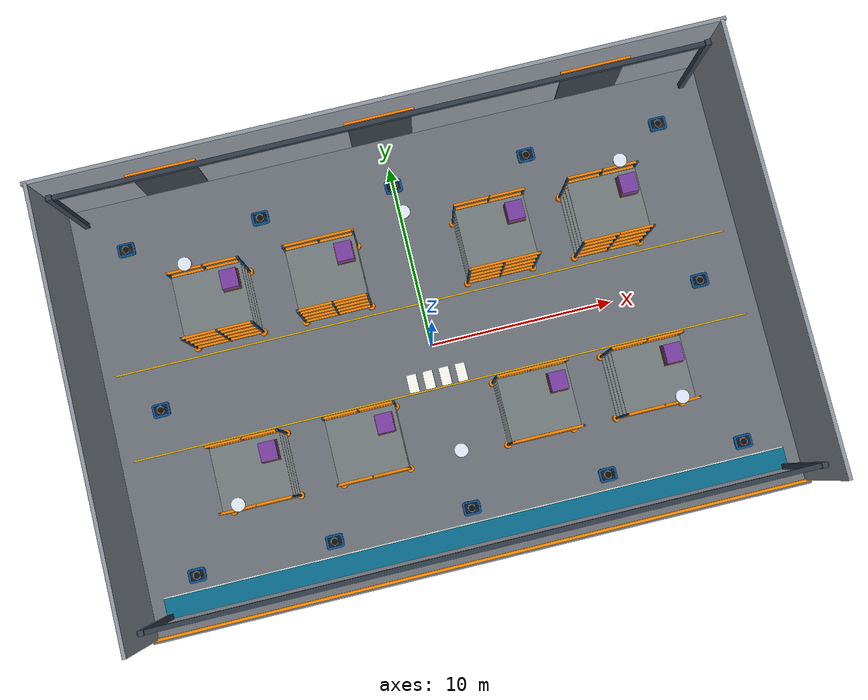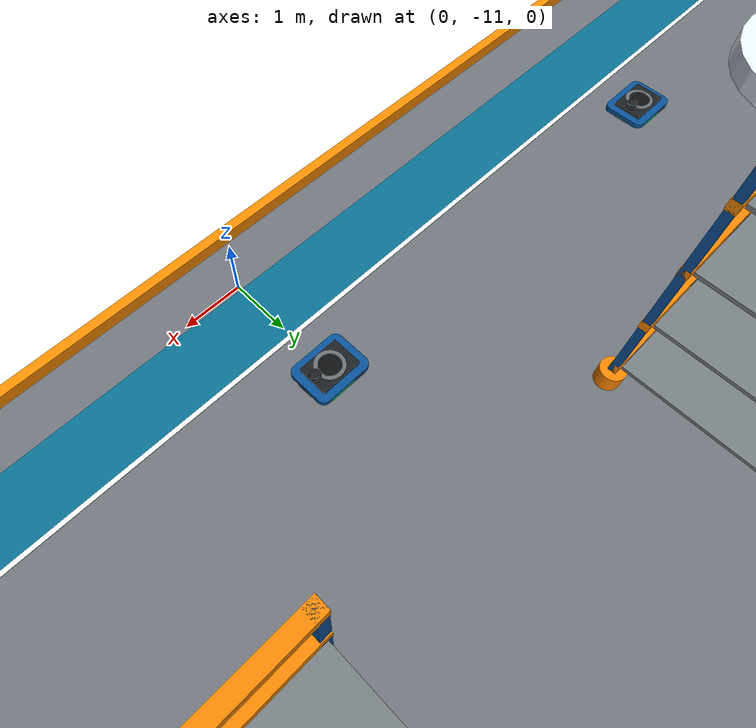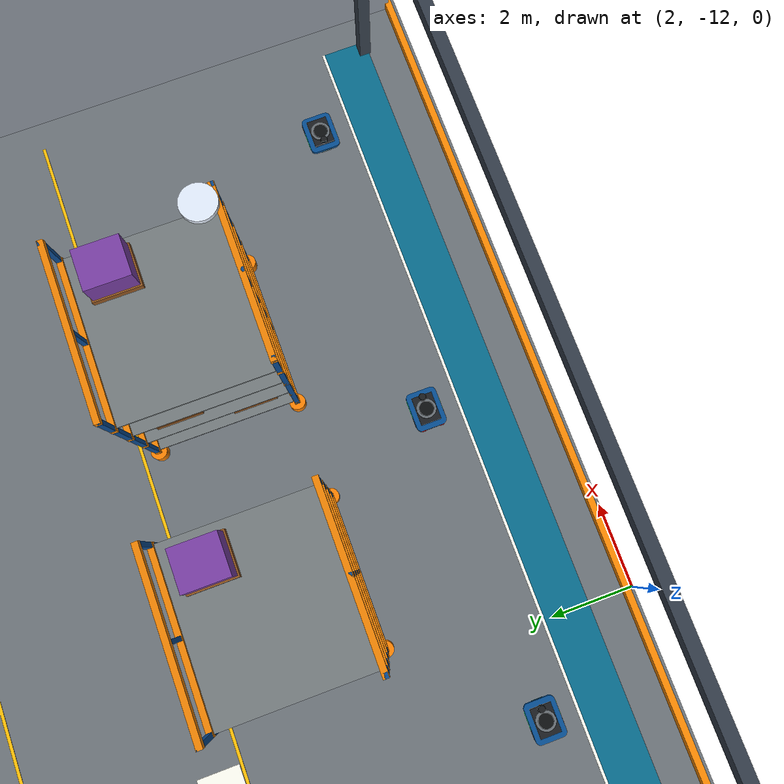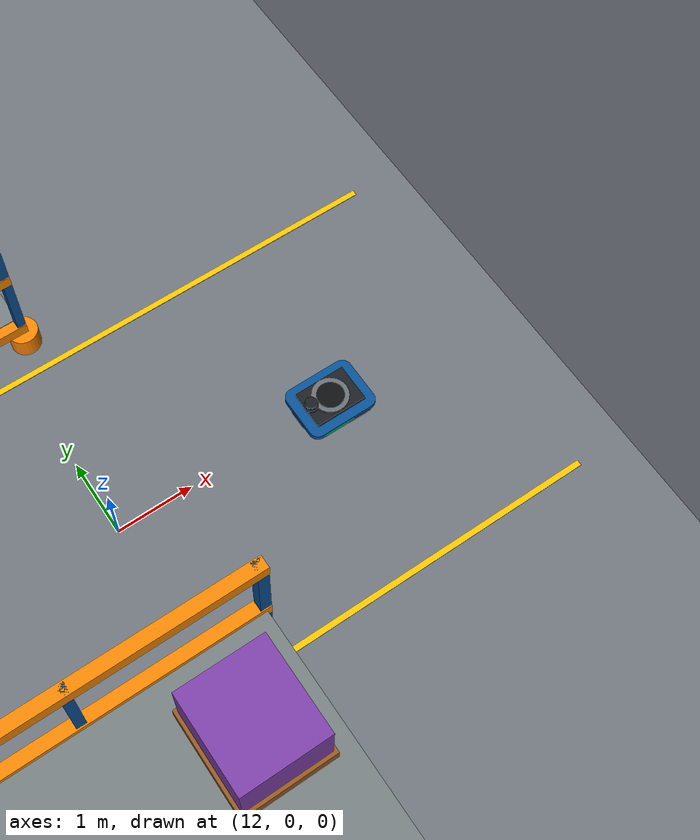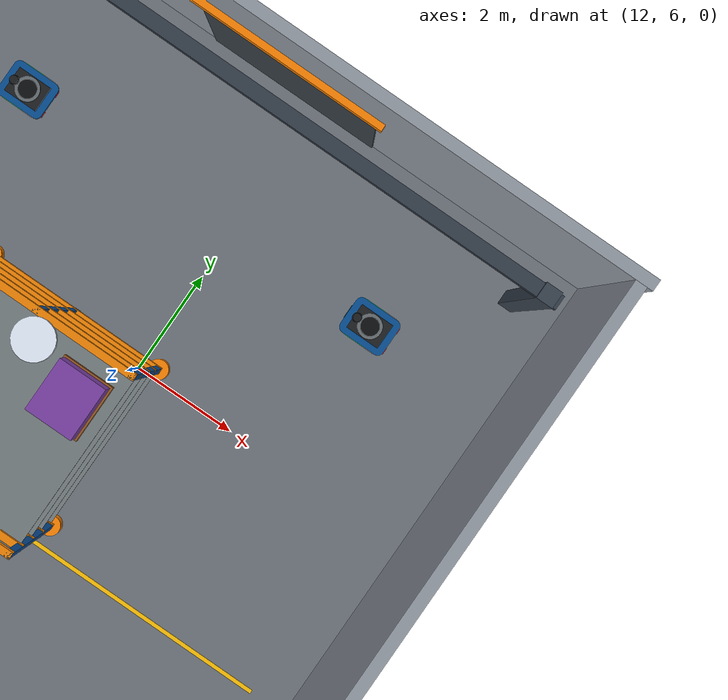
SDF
<?xml version="1.0"?>
<sdf version="1.10">
  <world name="kinesis_warehouse">
    <physics name="warehouse_physics" type="ignored">
      <max_step_size>0.002</max_step_size>
      <real_time_factor>1.0</real_time_factor>
    </physics>
    <plugin filename="gz-sim-physics-system" name="gz::sim::systems::Physics"/>
    <plugin filename="gz-sim-user-commands-system" name="gz::sim::systems::UserCommands"/>
    <plugin filename="gz-sim-scene-broadcaster-system" name="gz::sim::systems::SceneBroadcaster"/>
    <plugin filename="gz-sim-sensors-system" name="gz::sim::systems::Sensors"><render_engine>ogre2</render_engine></plugin>

    <gravity>0 0 -9.81</gravity>
    <magnetic_field>5.5645e-6 22.8758e-6 -42.3884e-6</magnetic_field>
    <scene><ambient>0.28 0.30 0.33 1</ambient><background>0.035 0.045 0.06 1</background><shadows>true</shadows><grid>false</grid></scene>
    <light type="directional" name="daylight"><cast_shadows>true</cast_shadows><pose>0 0 18 0 0 0</pose><diffuse>0.72 0.76 0.82 1</diffuse><specular>0.32 0.34 0.38 1</specular><direction>-0.35 0.25 -0.9</direction></light>
    <light type="point" name="highbay_sw"><pose>-11 -6 7 0 0 0</pose><diffuse>0.85 0.90 1 1</diffuse><specular>0.25 0.28 0.34 1</specular><attenuation><range>20</range><constant>0.7</constant><linear>0.03</linear><quadratic>0.005</quadratic></attenuation><cast_shadows>false</cast_shadows></light>
    <light type="point" name="highbay_sc"><pose>0 -6 7 0 0 0</pose><diffuse>0.85 0.90 1 1</diffuse><specular>0.25 0.28 0.34 1</specular><attenuation><range>20</range><constant>0.7</constant><linear>0.03</linear><quadratic>0.005</quadratic></attenuation><cast_shadows>false</cast_shadows></light>
    <light type="point" name="highbay_se"><pose>11 -6 7 0 0 0</pose><diffuse>0.85 0.90 1 1</diffuse><specular>0.25 0.28 0.34 1</specular><attenuation><range>20</range><constant>0.7</constant><linear>0.03</linear><quadratic>0.005</quadratic></attenuation><cast_shadows>false</cast_shadows></light>
    <light type="point" name="highbay_nw"><pose>-11 6 7 0 0 0</pose><diffuse>0.85 0.90 1 1</diffuse><specular>0.25 0.28 0.34 1</specular><attenuation><range>20</range><constant>0.7</constant><linear>0.03</linear><quadratic>0.005</quadratic></attenuation><cast_shadows>false</cast_shadows></light>
    <light type="point" name="highbay_nc"><pose>0 6 7 0 0 0</pose><diffuse>0.85 0.90 1 1</diffuse><specular>0.25 0.28 0.34 1</specular><attenuation><range>20</range><constant>0.7</constant><linear>0.03</linear><quadratic>0.005</quadratic></attenuation><cast_shadows>false</cast_shadows></light>
    <light type="point" name="highbay_ne"><pose>11 6 7 0 0 0</pose><diffuse>0.85 0.90 1 1</diffuse><specular>0.25 0.28 0.34 1</specular><attenuation><range>20</range><constant>0.7</constant><linear>0.03</linear><quadratic>0.005</quadratic></attenuation><cast_shadows>false</cast_shadows></light>

    <model name="warehouse_floor">
      <static>true</static>
      <link name="floor">
        <collision name="collision"><geometry><box><size>36 24 0.12</size></box></geometry></collision>
        <visual name="visual"><geometry><box><size>36 24 0.12</size></box></geometry><material><ambient>0.24 0.255 0.27 1</ambient><diffuse>0.43 0.455 0.48 1</diffuse><specular>0.28 0.30 0.32 1</specular></material></visual>
      </link>
    </model>

    <model name="north_wall"><static>true</static><pose>0 11.8 3.5 0 0 0</pose><link name="wall"><collision name="collision"><geometry><box><size>36 0.2 7</size></box></geometry></collision><visual name="visual"><geometry><box><size>36 0.2 7</size></box></geometry><material><ambient>0.34 0.36 0.39 1</ambient><diffuse>0.58 0.61 0.65 1</diffuse><specular>0.25 0.25 0.25 1</specular></material></visual></link></model>
    <model name="south_safety_barrier"><static>true</static><pose>0 -11.8 0.14 0 0 0</pose><link name="barrier"><collision name="collision"><geometry><box><size>36 0.16 0.28</size></box></geometry></collision><visual name="visual"><geometry><box><size>36 0.16 0.28</size></box></geometry><material><ambient>0.75 0.35 0 1</ambient><diffuse>1 0.55 0.01 1</diffuse></material></visual></link></model>
    <model name="east_wall"><static>true</static><pose>17.8 0 3.5 0 0 0</pose><link name="wall"><collision name="collision"><geometry><box><size>0.2 23.6 7</size></box></geometry></collision><visual name="visual"><geometry><box><size>0.2 23.6 7</size></box></geometry><material><ambient>0.34 0.36 0.39 1</ambient><diffuse>0.58 0.61 0.65 1</diffuse></material></visual></link></model>
    <model name="west_wall"><static>true</static><pose>-17.8 0 3.5 0 0 0</pose><link name="wall"><collision name="collision"><geometry><box><size>0.2 23.6 7</size></box></geometry></collision><visual name="visual"><geometry><box><size>0.2 23.6 7</size></box></geometry><material><ambient>0.34 0.36 0.39 1</ambient><diffuse>0.58 0.61 0.65 1</diffuse></material></visual></link></model>

    <model name="warehouse_details">
      <static>true</static>
      <link name="architecture">
        <!-- Main AMR traffic aisle and pedestrian boundary markings. -->
        <visual name="aisle_south"><pose>0 -2.35 0.071 0 0 0</pose><geometry><box><size>34 0.075 0.012</size></box></geometry><material><ambient>0.75 0.52 0.01 1</ambient><diffuse>1 0.76 0.02 1</diffuse><emissive>0.08 0.04 0 1</emissive></material></visual>
        <visual name="aisle_north"><pose>0 2.35 0.071 0 0 0</pose><geometry><box><size>34 0.075 0.012</size></box></geometry><material><ambient>0.75 0.52 0.01 1</ambient><diffuse>1 0.76 0.02 1</diffuse><emissive>0.08 0.04 0 1</emissive></material></visual>
        <visual name="pedestrian_lane"><pose>0 -10.35 0.07 0 0 0</pose><geometry><box><size>34 1.10 0.01</size></box></geometry><material><ambient>0.02 0.25 0.34 1</ambient><diffuse>0.03 0.43 0.56 1</diffuse></material></visual>
        <visual name="pedestrian_border"><pose>0 -9.78 0.076 0 0 0</pose><geometry><box><size>34 0.07 0.014</size></box></geometry><material><ambient>0.92 0.92 0.88 1</ambient><diffuse>1 1 0.96 1</diffuse></material></visual>
        <visual name="crosswalk_1"><pose>-1.5 -1.8 0.078 0 0 0</pose><geometry><box><size>0.55 1.0 0.015</size></box></geometry><material><ambient>0.9 0.9 0.86 1</ambient><diffuse>1 1 0.96 1</diffuse></material></visual>
        <visual name="crosswalk_2"><pose>-0.6 -1.8 0.078 0 0 0</pose><geometry><box><size>0.55 1.0 0.015</size></box></geometry><material><ambient>0.9 0.9 0.86 1</ambient><diffuse>1 1 0.96 1</diffuse></material></visual>
        <visual name="crosswalk_3"><pose>0.3 -1.8 0.078 0 0 0</pose><geometry><box><size>0.55 1.0 0.015</size></box></geometry><material><ambient>0.9 0.9 0.86 1</ambient><diffuse>1 1 0.96 1</diffuse></material></visual>
        <visual name="crosswalk_4"><pose>1.2 -1.8 0.078 0 0 0</pose><geometry><box><size>0.55 1.0 0.015</size></box></geometry><material><ambient>0.9 0.9 0.86 1</ambient><diffuse>1 1 0.96 1</diffuse></material></visual>

        <!-- Structural steel and open roof trusses preserve the overhead camera view. -->
        <visual name="column_nw"><pose>-16.8 10.8 3.5 0 0 0</pose><geometry><box><size>0.28 0.28 7</size></box></geometry><material><ambient>0.11 0.13 0.16 1</ambient><diffuse>0.22 0.26 0.31 1</diffuse><specular>0.5 0.5 0.5 1</specular></material></visual>
        <visual name="column_ne"><pose>16.8 10.8 3.5 0 0 0</pose><geometry><box><size>0.28 0.28 7</size></box></geometry><material><ambient>0.11 0.13 0.16 1</ambient><diffuse>0.22 0.26 0.31 1</diffuse><specular>0.5 0.5 0.5 1</specular></material></visual>
        <visual name="column_sw"><pose>-16.8 -10.8 3.5 0 0 0</pose><geometry><box><size>0.28 0.28 7</size></box></geometry><material><ambient>0.11 0.13 0.16 1</ambient><diffuse>0.22 0.26 0.31 1</diffuse><specular>0.5 0.5 0.5 1</specular></material></visual>
        <visual name="column_se"><pose>16.8 -10.8 3.5 0 0 0</pose><geometry><box><size>0.28 0.28 7</size></box></geometry><material><ambient>0.11 0.13 0.16 1</ambient><diffuse>0.22 0.26 0.31 1</diffuse><specular>0.5 0.5 0.5 1</specular></material></visual>
        <visual name="beam_north"><pose>0 10.8 6.75 0 0 0</pose><geometry><box><size>34 0.24 0.28</size></box></geometry><material><ambient>0.10 0.12 0.15 1</ambient><diffuse>0.20 0.24 0.29 1</diffuse></material></visual>
        <visual name="beam_south"><pose>0 -10.8 6.75 0 0 0</pose><geometry><box><size>34 0.24 0.28</size></box></geometry><material><ambient>0.10 0.12 0.15 1</ambient><diffuse>0.20 0.24 0.29 1</diffuse></material></visual>

        <!-- Loading doors and illuminated headers on the back wall. -->
        <visual name="dock_door_1"><pose>-11.5 11.68 2.35 0 0 0</pose><geometry><box><size>3.4 0.05 4.25</size></box></geometry><material><ambient>0.10 0.12 0.14 1</ambient><diffuse>0.22 0.25 0.28 1</diffuse><specular>0.35 0.35 0.35 1</specular></material></visual>
        <visual name="dock_door_2"><pose>0 11.68 2.35 0 0 0</pose><geometry><box><size>3.4 0.05 4.25</size></box></geometry><material><ambient>0.10 0.12 0.14 1</ambient><diffuse>0.22 0.25 0.28 1</diffuse><specular>0.35 0.35 0.35 1</specular></material></visual>
        <visual name="dock_door_3"><pose>11.5 11.68 2.35 0 0 0</pose><geometry><box><size>3.4 0.05 4.25</size></box></geometry><material><ambient>0.10 0.12 0.14 1</ambient><diffuse>0.22 0.25 0.28 1</diffuse><specular>0.35 0.35 0.35 1</specular></material></visual>
        <visual name="dock_header_1"><pose>-11.5 11.62 4.75 0 0 0</pose><geometry><box><size>3.7 0.12 0.28</size></box></geometry><material><ambient>0.72 0.31 0 1</ambient><diffuse>1 0.52 0.01 1</diffuse></material></visual>
        <visual name="dock_header_2"><pose>0 11.62 4.75 0 0 0</pose><geometry><box><size>3.7 0.12 0.28</size></box></geometry><material><ambient>0.72 0.31 0 1</ambient><diffuse>1 0.52 0.01 1</diffuse></material></visual>
        <visual name="dock_header_3"><pose>11.5 11.62 4.75 0 0 0</pose><geometry><box><size>3.7 0.12 0.28</size></box></geometry><material><ambient>0.72 0.31 0 1</ambient><diffuse>1 0.52 0.01 1</diffuse></material></visual>

        <!-- High-bay light fixtures. -->
        <visual name="fixture_sw"><pose>-11 -6 6.95 0 0 0</pose><geometry><cylinder><radius>0.34</radius><length>0.10</length></cylinder></geometry><material><ambient>0.7 0.74 0.82 1</ambient><diffuse>0.9 0.94 1 1</diffuse><emissive>0.5 0.55 0.65 1</emissive></material></visual>
        <visual name="fixture_sc"><pose>0 -6 6.95 0 0 0</pose><geometry><cylinder><radius>0.34</radius><length>0.10</length></cylinder></geometry><material><ambient>0.7 0.74 0.82 1</ambient><diffuse>0.9 0.94 1 1</diffuse><emissive>0.5 0.55 0.65 1</emissive></material></visual>
        <visual name="fixture_se"><pose>11 -6 6.95 0 0 0</pose><geometry><cylinder><radius>0.34</radius><length>0.10</length></cylinder></geometry><material><ambient>0.7 0.74 0.82 1</ambient><diffuse>0.9 0.94 1 1</diffuse><emissive>0.5 0.55 0.65 1</emissive></material></visual>
        <visual name="fixture_nw"><pose>-11 6 6.95 0 0 0</pose><geometry><cylinder><radius>0.34</radius><length>0.10</length></cylinder></geometry><material><ambient>0.7 0.74 0.82 1</ambient><diffuse>0.9 0.94 1 1</diffuse><emissive>0.5 0.55 0.65 1</emissive></material></visual>
        <visual name="fixture_nc"><pose>0 6 6.95 0 0 0</pose><geometry><cylinder><radius>0.34</radius><length>0.10</length></cylinder></geometry><material><ambient>0.7 0.74 0.82 1</ambient><diffuse>0.9 0.94 1 1</diffuse><emissive>0.5 0.55 0.65 1</emissive></material></visual>
        <visual name="fixture_ne"><pose>11 6 6.95 0 0 0</pose><geometry><cylinder><radius>0.34</radius><length>0.10</length></cylinder></geometry><material><ambient>0.7 0.74 0.82 1</ambient><diffuse>0.9 0.94 1 1</diffuse><emissive>0.5 0.55 0.65 1</emissive></material></visual>
      </link>
    </model>

    <include><uri>model://kinesis_rack</uri><name>rack_north_01</name><pose>-10.5 -4.5 0 0 0 0</pose></include>
    <include><uri>model://kinesis_rack</uri><name>rack_north_02</name><pose>-4.5 -4.5 0 0 0 0</pose></include>
    <include><uri>model://kinesis_rack</uri><name>rack_north_03</name><pose>4.5 -4.5 0 0 0 0</pose></include>
    <include><uri>model://kinesis_rack</uri><name>rack_north_04</name><pose>10.5 -4.5 0 0 0 0</pose></include>
    <include><uri>model://kinesis_rack</uri><name>rack_south_01</name><pose>-10.5 4.5 0 0 0 0</pose></include>
    <include><uri>model://kinesis_rack</uri><name>rack_south_02</name><pose>-4.5 4.5 0 0 0 0</pose></include>
    <include><uri>model://kinesis_rack</uri><name>rack_south_03</name><pose>4.5 4.5 0 0 0 0</pose></include>
    <include><uri>model://kinesis_rack</uri><name>rack_south_04</name><pose>10.5 4.5 0 0 0 0</pose></include>

    <include><uri>model://kinesis_amr</uri><name>robot_01</name><pose>-15 -9 0 0 0 0</pose></include>
    <include><uri>model://kinesis_amr</uri><name>robot_02</name><pose>-7.5 -9 0 0 0 0</pose></include>
    <include><uri>model://kinesis_amr</uri><name>robot_03</name><pose>0 -9 0 0 0 0</pose></include>
    <include><uri>model://kinesis_amr</uri><name>robot_04</name><pose>7.5 -9 0 0 0 0</pose></include>
    <include><uri>model://kinesis_amr</uri><name>robot_05</name><pose>15 -9 0 0 0 3.14159265359</pose></include>
    <include><uri>model://kinesis_amr</uri><name>robot_06</name><pose>-15 0 0 0 0 0</pose></include>
    <include><uri>model://kinesis_amr</uri><name>robot_07</name><pose>15 0 0 0 0 3.14159265359</pose></include>
    <include><uri>model://kinesis_amr</uri><name>robot_08</name><pose>-15 9 0 0 0 0</pose></include>
    <include><uri>model://kinesis_amr</uri><name>robot_09</name><pose>-7.5 9 0 0 0 0</pose></include>
    <include><uri>model://kinesis_amr</uri><name>robot_10</name><pose>0 9 0 0 0 3.14159265359</pose></include>
    <include><uri>model://kinesis_amr</uri><name>robot_11</name><pose>7.5 9 0 0 0 3.14159265359</pose></include>
    <include><uri>model://kinesis_amr</uri><name>robot_12</name><pose>15 9 0 0 0 3.14159265359</pose></include>
  </world>
</sdf>

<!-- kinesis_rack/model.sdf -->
<sdf version="1.10">
  <model name="kinesis_rack">
    <static>true</static>
    <link name="rack">
      <collision name="collision"><pose>0 0 2.4 0 0 0</pose><geometry><box><size>3.9 3.9 4.8</size></box></geometry></collision>

      <!-- Blue uprights -->
      <visual name="post_nw"><pose>-1.82 1.70 2.4 0 0 0</pose><geometry><box><size>0.11 0.11 4.8</size></box></geometry><material><ambient>0.03 0.16 0.30 1</ambient><diffuse>0.04 0.30 0.58 1</diffuse><specular>0.45 0.45 0.45 1</specular></material></visual>
      <visual name="post_ne"><pose>1.82 1.70 2.4 0 0 0</pose><geometry><box><size>0.11 0.11 4.8</size></box></geometry><material><ambient>0.03 0.16 0.30 1</ambient><diffuse>0.04 0.30 0.58 1</diffuse><specular>0.45 0.45 0.45 1</specular></material></visual>
      <visual name="post_sw"><pose>-1.82 -1.70 2.4 0 0 0</pose><geometry><box><size>0.11 0.11 4.8</size></box></geometry><material><ambient>0.03 0.16 0.30 1</ambient><diffuse>0.04 0.30 0.58 1</diffuse><specular>0.45 0.45 0.45 1</specular></material></visual>
      <visual name="post_se"><pose>1.82 -1.70 2.4 0 0 0</pose><geometry><box><size>0.11 0.11 4.8</size></box></geometry><material><ambient>0.03 0.16 0.30 1</ambient><diffuse>0.04 0.30 0.58 1</diffuse><specular>0.45 0.45 0.45 1</specular></material></visual>
      <visual name="post_mid_n"><pose>0 1.70 2.4 0 0 0</pose><geometry><box><size>0.10 0.10 4.8</size></box></geometry><material><ambient>0.03 0.16 0.30 1</ambient><diffuse>0.04 0.30 0.58 1</diffuse></material></visual>
      <visual name="post_mid_s"><pose>0 -1.70 2.4 0 0 0</pose><geometry><box><size>0.10 0.10 4.8</size></box></geometry><material><ambient>0.03 0.16 0.30 1</ambient><diffuse>0.04 0.30 0.58 1</diffuse></material></visual>

      <!-- Orange load beams -->
      <visual name="beam_n_1"><pose>0 1.70 0.45 0 0 0</pose><geometry><box><size>3.75 0.13 0.16</size></box></geometry><material><ambient>0.68 0.34 0.01 1</ambient><diffuse>0.95 0.52 0.015 1</diffuse></material></visual>
      <visual name="beam_n_2"><pose>0 1.70 1.55 0 0 0</pose><geometry><box><size>3.75 0.13 0.16</size></box></geometry><material><ambient>0.68 0.34 0.01 1</ambient><diffuse>0.95 0.52 0.015 1</diffuse></material></visual>
      <visual name="beam_n_3"><pose>0 1.70 2.65 0 0 0</pose><geometry><box><size>3.75 0.13 0.16</size></box></geometry><material><ambient>0.68 0.34 0.01 1</ambient><diffuse>0.95 0.52 0.015 1</diffuse></material></visual>
      <visual name="beam_n_4"><pose>0 1.70 3.75 0 0 0</pose><geometry><box><size>3.75 0.13 0.16</size></box></geometry><material><ambient>0.68 0.34 0.01 1</ambient><diffuse>0.95 0.52 0.015 1</diffuse></material></visual>
      <visual name="beam_n_5"><pose>0 1.70 4.72 0 0 0</pose><geometry><box><size>3.75 0.13 0.16</size></box></geometry><material><ambient>0.68 0.34 0.01 1</ambient><diffuse>0.95 0.52 0.015 1</diffuse></material></visual>
      <visual name="beam_s_1"><pose>0 -1.70 0.45 0 0 0</pose><geometry><box><size>3.75 0.13 0.16</size></box></geometry><material><ambient>0.68 0.34 0.01 1</ambient><diffuse>0.95 0.52 0.015 1</diffuse></material></visual>
      <visual name="beam_s_2"><pose>0 -1.70 1.55 0 0 0</pose><geometry><box><size>3.75 0.13 0.16</size></box></geometry><material><ambient>0.68 0.34 0.01 1</ambient><diffuse>0.95 0.52 0.015 1</diffuse></material></visual>
      <visual name="beam_s_3"><pose>0 -1.70 2.65 0 0 0</pose><geometry><box><size>3.75 0.13 0.16</size></box></geometry><material><ambient>0.68 0.34 0.01 1</ambient><diffuse>0.95 0.52 0.015 1</diffuse></material></visual>
      <visual name="beam_s_4"><pose>0 -1.70 3.75 0 0 0</pose><geometry><box><size>3.75 0.13 0.16</size></box></geometry><material><ambient>0.68 0.34 0.01 1</ambient><diffuse>0.95 0.52 0.015 1</diffuse></material></visual>
      <visual name="beam_s_5"><pose>0 -1.70 4.72 0 0 0</pose><geometry><box><size>3.75 0.13 0.16</size></box></geometry><material><ambient>0.68 0.34 0.01 1</ambient><diffuse>0.95 0.52 0.015 1</diffuse></material></visual>

      <!-- Galvanized shelf decks -->
      <visual name="deck_1"><pose>0 0 0.49 0 0 0</pose><geometry><box><size>3.64 3.24 0.055</size></box></geometry><material><ambient>0.22 0.24 0.25 1</ambient><diffuse>0.46 0.49 0.50 1</diffuse><specular>0.65 0.65 0.65 1</specular></material></visual>
      <visual name="deck_2"><pose>0 0 1.59 0 0 0</pose><geometry><box><size>3.64 3.24 0.055</size></box></geometry><material><ambient>0.22 0.24 0.25 1</ambient><diffuse>0.46 0.49 0.50 1</diffuse><specular>0.65 0.65 0.65 1</specular></material></visual>
      <visual name="deck_3"><pose>0 0 2.69 0 0 0</pose><geometry><box><size>3.64 3.24 0.055</size></box></geometry><material><ambient>0.22 0.24 0.25 1</ambient><diffuse>0.46 0.49 0.50 1</diffuse><specular>0.65 0.65 0.65 1</specular></material></visual>
      <visual name="deck_4"><pose>0 0 3.79 0 0 0</pose><geometry><box><size>3.64 3.24 0.055</size></box></geometry><material><ambient>0.22 0.24 0.25 1</ambient><diffuse>0.46 0.49 0.50 1</diffuse><specular>0.65 0.65 0.65 1</specular></material></visual>

      <!-- Pallets and varied loads -->
      <visual name="pallet_a"><pose>-1.15 -0.78 0.60 0 0 0</pose><geometry><box><size>0.95 1.05 0.16</size></box></geometry><material><ambient>0.32 0.18 0.07 1</ambient><diffuse>0.58 0.34 0.13 1</diffuse></material></visual>
      <visual name="load_a"><pose>-1.15 -0.78 1.02 0 0 0</pose><geometry><box><size>0.88 0.98 0.68</size></box></geometry><material><ambient>0.34 0.20 0.08 1</ambient><diffuse>0.66 0.40 0.15 1</diffuse></material></visual>
      <visual name="pallet_b"><pose>0 -0.78 0.60 0 0 0</pose><geometry><box><size>0.95 1.05 0.16</size></box></geometry><material><ambient>0.32 0.18 0.07 1</ambient><diffuse>0.58 0.34 0.13 1</diffuse></material></visual>
      <visual name="load_b"><pose>0 -0.78 0.95 0 0 0</pose><geometry><box><size>0.88 0.98 0.54</size></box></geometry><material><ambient>0.10 0.30 0.42 1</ambient><diffuse>0.16 0.50 0.66 1</diffuse></material></visual>
      <visual name="pallet_c"><pose>1.15 0.78 0.60 0 0 0</pose><geometry><box><size>0.95 1.05 0.16</size></box></geometry><material><ambient>0.32 0.18 0.07 1</ambient><diffuse>0.58 0.34 0.13 1</diffuse></material></visual>
      <visual name="load_c"><pose>1.15 0.78 1.03 0 0 0</pose><geometry><box><size>0.88 0.98 0.70</size></box></geometry><material><ambient>0.43 0.12 0.05 1</ambient><diffuse>0.78 0.24 0.08 1</diffuse></material></visual>
      <visual name="pallet_d"><pose>-1.15 0.78 1.70 0 0 0</pose><geometry><box><size>0.95 1.05 0.16</size></box></geometry><material><ambient>0.32 0.18 0.07 1</ambient><diffuse>0.58 0.34 0.13 1</diffuse></material></visual>
      <visual name="load_d"><pose>-1.15 0.78 2.08 0 0 0</pose><geometry><box><size>0.88 0.98 0.60</size></box></geometry><material><ambient>0.12 0.34 0.16 1</ambient><diffuse>0.20 0.62 0.28 1</diffuse></material></visual>
      <visual name="pallet_e"><pose>0 -0.78 2.80 0 0 0</pose><geometry><box><size>0.95 1.05 0.16</size></box></geometry><material><ambient>0.32 0.18 0.07 1</ambient><diffuse>0.58 0.34 0.13 1</diffuse></material></visual>
      <visual name="load_e"><pose>0 -0.78 3.20 0 0 0</pose><geometry><box><size>0.88 0.98 0.64</size></box></geometry><material><ambient>0.34 0.20 0.08 1</ambient><diffuse>0.66 0.40 0.15 1</diffuse></material></visual>
      <visual name="pallet_f"><pose>1.15 0.78 3.90 0 0 0</pose><geometry><box><size>0.95 1.05 0.16</size></box></geometry><material><ambient>0.32 0.18 0.07 1</ambient><diffuse>0.58 0.34 0.13 1</diffuse></material></visual>
      <visual name="load_f"><pose>1.15 0.78 4.28 0 0 0</pose><geometry><box><size>0.88 0.98 0.60</size></box></geometry><material><ambient>0.26 0.14 0.36 1</ambient><diffuse>0.48 0.25 0.65 1</diffuse></material></visual>

      <!-- High-visibility post guards -->
      <visual name="guard_nw"><pose>-1.82 1.70 0.18 0 0 0</pose><geometry><cylinder><radius>0.19</radius><length>0.36</length></cylinder></geometry><material><ambient>0.72 0.31 0 1</ambient><diffuse>1 0.52 0.01 1</diffuse></material></visual>
      <visual name="guard_ne"><pose>1.82 1.70 0.18 0 0 0</pose><geometry><cylinder><radius>0.19</radius><length>0.36</length></cylinder></geometry><material><ambient>0.72 0.31 0 1</ambient><diffuse>1 0.52 0.01 1</diffuse></material></visual>
      <visual name="guard_sw"><pose>-1.82 -1.70 0.18 0 0 0</pose><geometry><cylinder><radius>0.19</radius><length>0.36</length></cylinder></geometry><material><ambient>0.72 0.31 0 1</ambient><diffuse>1 0.52 0.01 1</diffuse></material></visual>
      <visual name="guard_se"><pose>1.82 -1.70 0.18 0 0 0</pose><geometry><cylinder><radius>0.19</radius><length>0.36</length></cylinder></geometry><material><ambient>0.72 0.31 0 1</ambient><diffuse>1 0.52 0.01 1</diffuse></material></visual>
    </link>
  </model>
</sdf>

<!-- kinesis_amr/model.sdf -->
<sdf version="1.10">
  <model name="kinesis_amr">
    <pose>0 0 0.21 0 0 0</pose>
    <link name="base_link">
      <inertial>
        <mass>150.0</mass>
        <inertia><ixx>4.0</ixx><iyy>5.8</iyy><izz>7.2</izz></inertia>
      </inertial>
      <collision name="chassis_collision">
        <geometry><box><size>0.92 0.72 0.30</size></box></geometry>
      </collision>
      <visual name="chassis_visual">
        <geometry><mesh><uri>model://kinesis_amr/meshes/amr_shell.obj</uri></mesh></geometry>
        <material><ambient>0.015 0.12 0.22 1</ambient><diffuse>0.025 0.31 0.58 1</diffuse><specular>0.65 0.68 0.72 1</specular></material>
      </visual>
      <visual name="safety_bumper_visual">
        <pose>0.461 0 -0.035 0 0 0</pose>
        <geometry><box><size>0.025 0.54 0.095</size></box></geometry>
        <material><ambient>0.8 0.24 0.01 1</ambient><diffuse>1 0.40 0.015 1</diffuse><emissive>0.16 0.035 0 1</emissive></material>
      </visual>
      <visual name="rear_bumper_visual">
        <pose>-0.461 0 -0.035 0 0 0</pose>
        <geometry><box><size>0.025 0.54 0.095</size></box></geometry>
        <material><ambient>0.11 0.12 0.13 1</ambient><diffuse>0.20 0.22 0.24 1</diffuse><specular>0.45 0.45 0.45 1</specular></material>
      </visual>
      <visual name="top_service_deck">
        <pose>0 0 0.165 0 0 0</pose>
        <geometry><box><size>0.68 0.50 0.055</size></box></geometry>
        <material><ambient>0.045 0.05 0.055 1</ambient><diffuse>0.11 0.12 0.13 1</diffuse><specular>0.75 0.75 0.75 1</specular></material>
      </visual>
      <visual name="lift_turntable">
        <pose>0 0 0.205 0 0 0</pose>
        <geometry><cylinder><radius>0.235</radius><length>0.035</length></cylinder></geometry>
        <material><ambient>0.20 0.22 0.23 1</ambient><diffuse>0.40 0.43 0.45 1</diffuse><specular>0.85 0.85 0.82 1</specular></material>
      </visual>
      <visual name="lift_grip">
        <pose>0 0 0.224 0 0 0</pose>
        <geometry><cylinder><radius>0.175</radius><length>0.006</length></cylinder></geometry>
        <material><ambient>0.025 0.027 0.03 1</ambient><diffuse>0.055 0.06 0.065 1</diffuse></material>
      </visual>
      <visual name="front_sensor_window">
        <pose>0.473 0 0.045 0 0 0</pose>
        <geometry><box><size>0.015 0.26 0.065</size></box></geometry>
        <material><ambient>0.015 0.07 0.075 1</ambient><diffuse>0.02 0.16 0.18 1</diffuse><specular>0.9 0.9 0.9 1</specular><emissive>0 0.04 0.05 1</emissive></material>
      </visual>
      <visual name="left_status_light">
        <pose>0.11 0.371 0.08 0 0 0</pose>
        <geometry><box><size>0.42 0.012 0.028</size></box></geometry>
        <material><ambient>0.01 0.42 0.20 1</ambient><diffuse>0.02 0.90 0.42 1</diffuse><emissive>0.01 0.45 0.18 1</emissive></material>
      </visual>
      <visual name="right_status_light">
        <pose>0.11 -0.371 0.08 0 0 0</pose>
        <geometry><box><size>0.42 0.012 0.028</size></box></geometry>
        <material><ambient>0.01 0.42 0.20 1</ambient><diffuse>0.02 0.90 0.42 1</diffuse><emissive>0.01 0.45 0.18 1</emissive></material>
      </visual>
      <visual name="rear_left_light">
        <pose>-0.473 0.22 0.045 0 0 0</pose>
        <geometry><box><size>0.015 0.12 0.052</size></box></geometry>
        <material><ambient>0.45 0.01 0.005 1</ambient><diffuse>0.9 0.025 0.01 1</diffuse><emissive>0.40 0.005 0 1</emissive></material>
      </visual>
      <visual name="rear_right_light">
        <pose>-0.473 -0.22 0.045 0 0 0</pose>
        <geometry><box><size>0.015 0.12 0.052</size></box></geometry>
        <material><ambient>0.45 0.01 0.005 1</ambient><diffuse>0.9 0.025 0.01 1</diffuse><emissive>0.40 0.005 0 1</emissive></material>
      </visual>
      <visual name="left_side_panel">
        <pose>-0.18 0.372 0.015 0 0 0</pose>
        <geometry><box><size>0.30 0.014 0.13</size></box></geometry>
        <material><ambient>0.025 0.03 0.035 1</ambient><diffuse>0.07 0.08 0.09 1</diffuse><specular>0.5 0.5 0.5 1</specular></material>
      </visual>
      <visual name="right_side_panel">
        <pose>-0.18 -0.372 0.015 0 0 0</pose>
        <geometry><box><size>0.30 0.014 0.13</size></box></geometry>
        <material><ambient>0.025 0.03 0.035 1</ambient><diffuse>0.07 0.08 0.09 1</diffuse><specular>0.5 0.5 0.5 1</specular></material>
      </visual>
    </link>

    <link name="left_wheel">
      <pose relative_to="base_link">0 0.275 -0.12 1.57079632679 0 0</pose>
      <inertial><mass>2.5</mass><inertia><ixx>0.03</ixx><iyy>0.03</iyy><izz>0.03</izz></inertia></inertial>
      <collision name="collision"><geometry><cylinder><radius>0.10</radius><length>0.06</length></cylinder></geometry></collision>
      <visual name="tire"><geometry><cylinder><radius>0.10</radius><length>0.06</length></cylinder></geometry><material><ambient>0.015 0.015 0.016 1</ambient><diffuse>0.035 0.038 0.04 1</diffuse></material></visual>
      <visual name="hub"><geometry><cylinder><radius>0.052</radius><length>0.065</length></cylinder></geometry><material><ambient>0.20 0.22 0.24 1</ambient><diffuse>0.42 0.45 0.48 1</diffuse><specular>0.8 0.8 0.8 1</specular></material></visual>
    </link>
    <link name="right_wheel">
      <pose relative_to="base_link">0 -0.275 -0.12 1.57079632679 0 0</pose>
      <inertial><mass>2.5</mass><inertia><ixx>0.03</ixx><iyy>0.03</iyy><izz>0.03</izz></inertia></inertial>
      <collision name="collision"><geometry><cylinder><radius>0.10</radius><length>0.06</length></cylinder></geometry></collision>
      <visual name="tire"><geometry><cylinder><radius>0.10</radius><length>0.06</length></cylinder></geometry><material><ambient>0.015 0.015 0.016 1</ambient><diffuse>0.035 0.038 0.04 1</diffuse></material></visual>
      <visual name="hub"><geometry><cylinder><radius>0.052</radius><length>0.065</length></cylinder></geometry><material><ambient>0.20 0.22 0.24 1</ambient><diffuse>0.42 0.45 0.48 1</diffuse><specular>0.8 0.8 0.8 1</specular></material></visual>
    </link>
    <joint name="left_wheel_joint" type="revolute">
      <parent>base_link</parent><child>left_wheel</child><axis><xyz expressed_in="__model__">0 1 0</xyz></axis>
    </joint>
    <joint name="right_wheel_joint" type="revolute">
      <parent>base_link</parent><child>right_wheel</child><axis><xyz expressed_in="__model__">0 1 0</xyz></axis>
    </joint>

    <link name="front_caster">
      <pose relative_to="base_link">0.32 0 -0.15 0 0 0</pose>
      <inertial><mass>0.5</mass><inertia><ixx>0.002</ixx><iyy>0.002</iyy><izz>0.002</izz></inertia></inertial>
      <collision name="collision"><geometry><sphere><radius>0.055</radius></sphere></geometry><surface><friction><ode><mu>0.01</mu><mu2>0.01</mu2></ode></friction></surface></collision>
      <visual name="visual"><geometry><sphere><radius>0.055</radius></sphere></geometry></visual>
    </link>
    <joint name="front_caster_joint" type="ball"><parent>base_link</parent><child>front_caster</child></joint>
    <link name="rear_caster">
      <pose relative_to="base_link">-0.32 0 -0.15 0 0 0</pose>
      <inertial><mass>0.5</mass><inertia><ixx>0.002</ixx><iyy>0.002</iyy><izz>0.002</izz></inertia></inertial>
      <collision name="collision"><geometry><sphere><radius>0.055</radius></sphere></geometry><surface><friction><ode><mu>0.01</mu><mu2>0.01</mu2></ode></friction></surface></collision>
      <visual name="visual"><geometry><sphere><radius>0.055</radius></sphere></geometry></visual>
    </link>
    <joint name="rear_caster_joint" type="ball"><parent>base_link</parent><child>rear_caster</child></joint>

    <link name="lidar_link">
      <pose relative_to="base_link">0.28 0 0.27 0 0 0</pose>
      <inertial><mass>0.2</mass><inertia><ixx>0.001</ixx><iyy>0.001</iyy><izz>0.001</izz></inertia></inertial>
      <visual name="lidar_base"><pose>0 0 -0.025 0 0 0</pose><geometry><cylinder><radius>0.09</radius><length>0.045</length></cylinder></geometry><material><ambient>0.035 0.04 0.045 1</ambient><diffuse>0.08 0.09 0.10 1</diffuse><specular>0.6 0.6 0.6 1</specular></material></visual>
      <visual name="lidar_glass"><pose>0 0 0.018 0 0 0</pose><geometry><cylinder><radius>0.071</radius><length>0.055</length></cylinder></geometry><material><ambient>0.015 0.08 0.10 1</ambient><diffuse>0.02 0.18 0.22 1</diffuse><specular>0.95 0.95 0.95 1</specular><emissive>0 0.025 0.035 1</emissive></material></visual>
      <visual name="lidar_cap"><pose>0 0 0.052 0 0 0</pose><geometry><cylinder><radius>0.077</radius><length>0.014</length></cylinder></geometry><material><ambient>0.04 0.045 0.05 1</ambient><diffuse>0.10 0.11 0.12 1</diffuse><specular>0.7 0.7 0.7 1</specular></material></visual>
      <sensor name="lidar" type="gpu_lidar">
        <pose>0 0 0.05 0 0 0</pose>
        <update_rate>10</update_rate>
        <lidar>
          <scan><horizontal><samples>720</samples><resolution>1</resolution><min_angle>-3.14159265359</min_angle><max_angle>3.14159265359</max_angle></horizontal></scan>
          <range><min>0.12</min><max>18.0</max><resolution>0.01</resolution></range>
          <noise><type>gaussian</type><mean>0.0</mean><stddev>0.01</stddev></noise>
        </lidar>
        <always_on>true</always_on><visualize>false</visualize>
      </sensor>
    </link>
    <joint name="lidar_joint" type="fixed"><parent>base_link</parent><child>lidar_link</child></joint>

    <plugin filename="gz-sim-diff-drive-system" name="gz::sim::systems::DiffDrive">
      <left_joint>left_wheel_joint</left_joint>
      <right_joint>right_wheel_joint</right_joint>
      <wheel_separation>0.55</wheel_separation>
      <wheel_radius>0.10</wheel_radius>
      <odom_publish_frequency>30</odom_publish_frequency>
    </plugin>
  </model>
</sdf>
